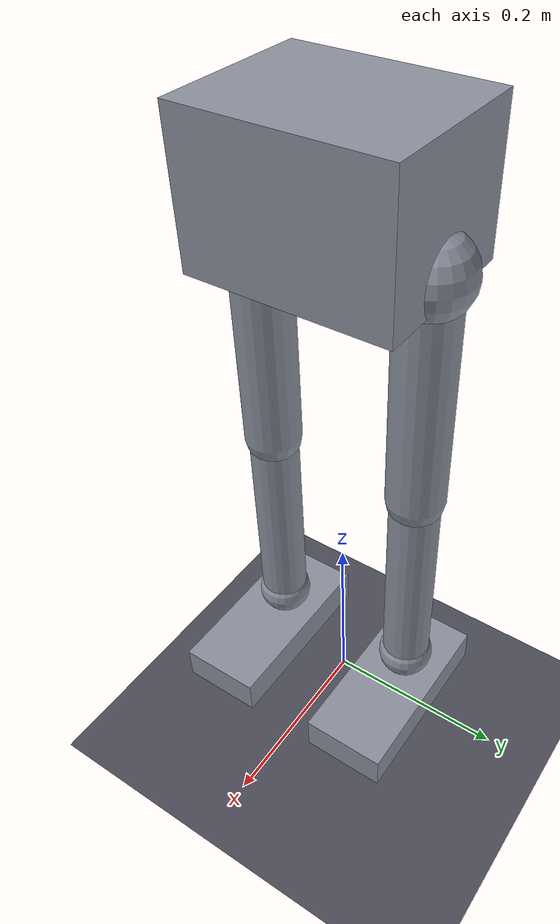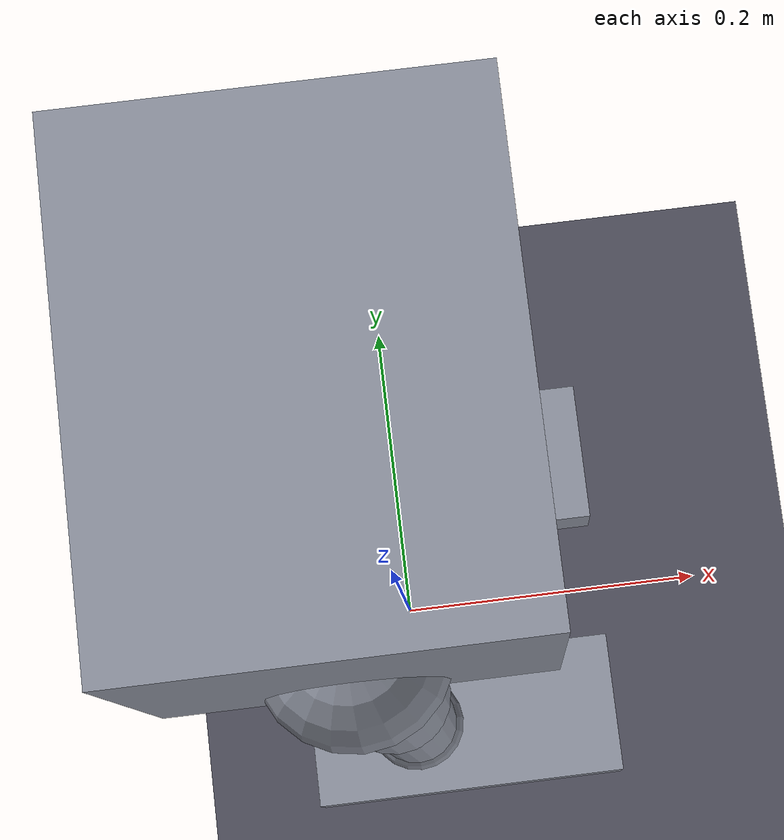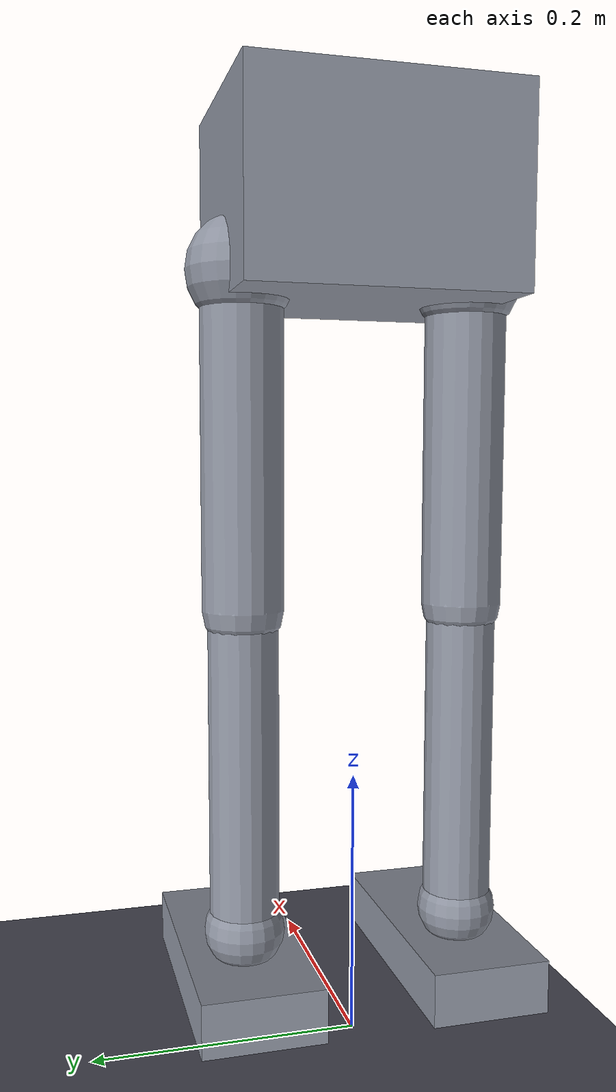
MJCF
<mujoco model="lerobot_legs">
  <compiler angle="radian"/>
  <option timestep="0.005" gravity="0 0 -9.81" integrator="implicitfast"/>

  <default>
    <joint armature="0.02" damping="0.5" limited="true" range="-2.6 2.6"/>
    <geom contype="1" conaffinity="1" friction="1.0 0.1 0.1" rgba="0.55 0.57 0.62 1"/>
    <motor ctrllimited="false"/>
  </default>

  <worldbody>
    <light name="top" pos="0 0 2"/>
    <geom name="floor" type="plane" size="0 0 0.1" pos="0 0 0" rgba="0.3 0.3 0.35 1"
          contype="1" conaffinity="1" friction="1.0 0.1 0.1"/>

    <body name="pelvis" pos="0 0 0.62">
      <freejoint name="root"/>
      <geom name="pelvis" type="box" size="0.08 0.10 0.07" mass="8.0"/>

      <!-- ============================ LEFT leg ============================ -->
      <body name="L_hip_yaw" pos="0 0.085 -0.05">
        <joint name="L_hip_yaw" axis="0 0 1"/>
        <geom type="sphere" size="0.04" mass="0.8"/>
        <body name="L_hip_roll" pos="0 0 0">
          <joint name="L_hip_roll" axis="1 0 0"/>
          <geom type="sphere" size="0.035" mass="0.6"/>
          <body name="L_hip_pitch" pos="0 0 0">
            <joint name="L_hip_pitch" axis="0 1 0"/>
            <geom type="capsule" fromto="0 0 0 0 0 -0.24" size="0.03" mass="2.0"/>
            <body name="L_knee" pos="0 0 -0.24">
              <joint name="L_knee" axis="0 1 0" range="0 2.6"/>
              <geom type="capsule" fromto="0 0 0 0 0 -0.24" size="0.026" mass="1.4"/>
              <body name="L_ankle_pitch" pos="0 0 -0.24">
                <joint name="L_ankle_pitch" axis="0 1 0"/>
                <geom type="sphere" size="0.03" mass="0.3"/>
                <body name="L_ankle_roll" pos="0 0 0">
                  <joint name="L_ankle_roll" axis="1 0 0"/>
                  <geom name="L_foot" type="box" pos="0.03 0 -0.04" size="0.10 0.045 0.02" mass="0.6"/>
                </body>
              </body>
            </body>
          </body>
        </body>
      </body>

      <!-- ============================ RIGHT leg =========================== -->
      <body name="R_hip_yaw" pos="0 -0.085 -0.05">
        <joint name="R_hip_yaw" axis="0 0 1"/>
        <geom type="sphere" size="0.04" mass="0.8"/>
        <body name="R_hip_roll" pos="0 0 0">
          <joint name="R_hip_roll" axis="1 0 0"/>
          <geom type="sphere" size="0.035" mass="0.6"/>
          <body name="R_hip_pitch" pos="0 0 0">
            <joint name="R_hip_pitch" axis="0 1 0"/>
            <geom type="capsule" fromto="0 0 0 0 0 -0.24" size="0.03" mass="2.0"/>
            <body name="R_knee" pos="0 0 -0.24">
              <joint name="R_knee" axis="0 1 0" range="0 2.6"/>
              <geom type="capsule" fromto="0 0 0 0 0 -0.24" size="0.026" mass="1.4"/>
              <body name="R_ankle_pitch" pos="0 0 -0.24">
                <joint name="R_ankle_pitch" axis="0 1 0"/>
                <geom type="sphere" size="0.03" mass="0.3"/>
                <body name="R_ankle_roll" pos="0 0 0">
                  <joint name="R_ankle_roll" axis="1 0 0"/>
                  <geom name="R_foot" type="box" pos="0.03 0 -0.04" size="0.10 0.045 0.02" mass="0.6"/>
                </body>
              </body>
            </body>
          </body>
        </body>
      </body>
    </body>
  </worldbody>

  <actuator>
    <motor name="L_hip_yaw"     joint="L_hip_yaw"     gear="1"/>
    <motor name="L_hip_roll"    joint="L_hip_roll"    gear="1"/>
    <motor name="L_hip_pitch"   joint="L_hip_pitch"   gear="1"/>
    <motor name="L_knee"        joint="L_knee"        gear="1"/>
    <motor name="L_ankle_pitch" joint="L_ankle_pitch" gear="1"/>
    <motor name="L_ankle_roll"  joint="L_ankle_roll"  gear="1"/>
    <motor name="R_hip_yaw"     joint="R_hip_yaw"     gear="1"/>
    <motor name="R_hip_roll"    joint="R_hip_roll"    gear="1"/>
    <motor name="R_hip_pitch"   joint="R_hip_pitch"   gear="1"/>
    <motor name="R_knee"        joint="R_knee"        gear="1"/>
    <motor name="R_ankle_pitch" joint="R_ankle_pitch" gear="1"/>
    <motor name="R_ankle_roll"  joint="R_ankle_roll"  gear="1"/>
  </actuator>
</mujoco>
